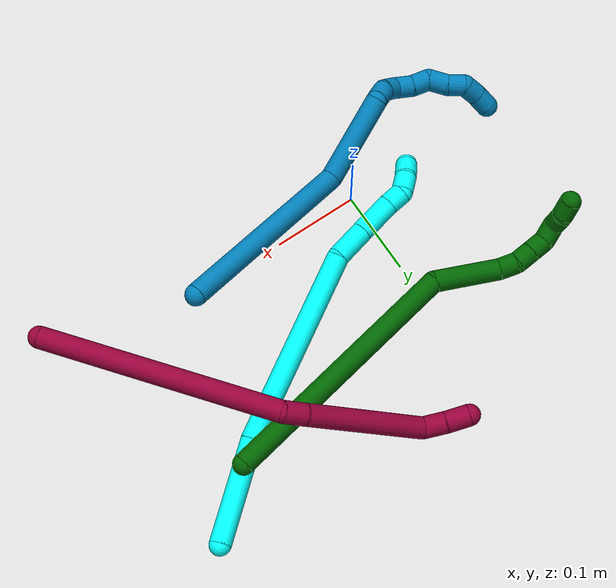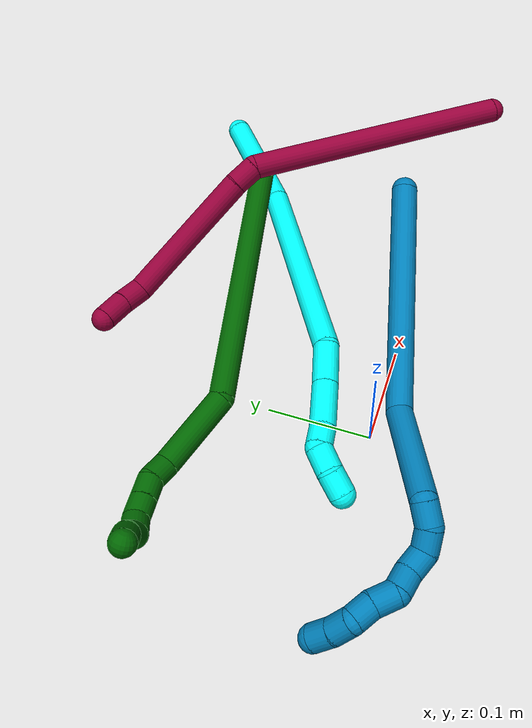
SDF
<sdf version="1.7">
 <world name="default">
  <model name="3">
   <static>0</static>
   <link name="3">
    <collision name="collision-cylinder-e_1_1_4">
     <pose>-0.055306 -0.019465 0.011481 1.03789 -1.18288 -0.732614</pose>
     <geometry><cylinder><radius>0.0125</radius><length>0.119491</length></cylinder></geometry>
     <surface>
      <friction><ode><mu>1.16</mu><mu2>1.16</mu2><slip1>0</slip1><slip2>0</slip2></ode></friction>
      <contact><ode><kp>1e+06</kp><kd>1</kd><max_vel>0</max_vel><min_depth>0.001</min_depth></ode></contact>
     </surface>
    </collision>
    <visual name="visual-cylinder-e_1_1_4">
     <pose>-0.055306 -0.019465 0.011481 1.03789 -1.18288 -0.732614</pose>
     <geometry><cylinder><radius>0.0125</radius><length>0.119491</length></cylinder></geometry>
     <material><ambient>0.003922 1 0.996078 1</ambient></material>
    </visual>
    <collision name="collision-cylinder-e_2_4_5">
     <pose>-0.212458 -0.088135 0.023857 1.55261 -1.12068 -1.10437</pose>
     <geometry><cylinder><radius>0.0125</radius><length>0.226224</length></cylinder></geometry>
     <surface>
      <friction><ode><mu>1.16</mu><mu2>1.16</mu2><slip1>0</slip1><slip2>0</slip2></ode></friction>
      <contact><ode><kp>1e+06</kp><kd>1</kd><max_vel>0</max_vel><min_depth>0.001</min_depth></ode></contact>
     </surface>
    </collision>
    <visual name="visual-cylinder-e_2_4_5">
     <pose>-0.212458 -0.088135 0.023857 1.55261 -1.12068 -1.10437</pose>
     <geometry><cylinder><radius>0.0125</radius><length>0.226224</length></cylinder></geometry>
     <material><ambient>0.003922 1 0.996078 1</ambient></material>
    </visual>
    <collision name="collision-cylinder-e_3_5_6">
     <pose>-0.328895 -0.151794 0.027335 1.39394 -0.78222 -0.664769</pose>
     <geometry><cylinder><radius>0.0125</radius><length>0.041403</length></cylinder></geometry>
     <surface>
      <friction><ode><mu>1.16</mu><mu2>1.16</mu2><slip1>0</slip1><slip2>0</slip2></ode></friction>
      <contact><ode><kp>1e+06</kp><kd>1</kd><max_vel>0</max_vel><min_depth>0.001</min_depth></ode></contact>
     </surface>
    </collision>
    <visual name="visual-cylinder-e_3_5_6">
     <pose>-0.328895 -0.151794 0.027335 1.39394 -0.78222 -0.664769</pose>
     <geometry><cylinder><radius>0.0125</radius><length>0.041403</length></cylinder></geometry>
     <material><ambient>0.003922 1 0.996078 1</ambient></material>
    </visual>
    <collision name="collision-cylinder-e_4_6_7">
     <pose>-0.35961 -0.182221 0.031073 1.49867 -0.788817 -0.738898</pose>
     <geometry><cylinder><radius>0.0125</radius><length>0.045449</length></cylinder></geometry>
     <surface>
      <friction><ode><mu>1.16</mu><mu2>1.16</mu2><slip1>0</slip1><slip2>0</slip2></ode></friction>
      <contact><ode><kp>1e+06</kp><kd>1</kd><max_vel>0</max_vel><min_depth>0.001</min_depth></ode></contact>
     </surface>
    </collision>
    <visual name="visual-cylinder-e_4_6_7">
     <pose>-0.35961 -0.182221 0.031073 1.49867 -0.788817 -0.738898</pose>
     <geometry><cylinder><radius>0.0125</radius><length>0.045449</length></cylinder></geometry>
     <material><ambient>0.003922 1 0.996078 1</ambient></material>
    </visual>
    <collision name="collision-cylinder-e_5_7_8">
     <pose>-0.382555 -0.206079 0.031429 1.67161 -0.710628 -0.779034</pose>
     <geometry><cylinder><radius>0.0125</radius><length>0.020914</length></cylinder></geometry>
     <surface>
      <friction><ode><mu>1.16</mu><mu2>1.16</mu2><slip1>0</slip1><slip2>0</slip2></ode></friction>
      <contact><ode><kp>1e+06</kp><kd>1</kd><max_vel>0</max_vel><min_depth>0.001</min_depth></ode></contact>
     </surface>
    </collision>
    <visual name="visual-cylinder-e_5_7_8">
     <pose>-0.382555 -0.206079 0.031429 1.67161 -0.710628 -0.779034</pose>
     <geometry><cylinder><radius>0.0125</radius><length>0.020914</length></cylinder></geometry>
     <material><ambient>0.003922 1 0.996078 1</ambient></material>
    </visual>
    <collision name="collision-cylinder-e_6_8_9">
     <pose>-0.399326 -0.217878 0.035571 0.670024 -1.00622 -0.3786</pose>
     <geometry><cylinder><radius>0.0125</radius><length>0.023555</length></cylinder></geometry>
     <surface>
      <friction><ode><mu>1.16</mu><mu2>1.16</mu2><slip1>0</slip1><slip2>0</slip2></ode></friction>
      <contact><ode><kp>1e+06</kp><kd>1</kd><max_vel>0</max_vel><min_depth>0.001</min_depth></ode></contact>
     </surface>
    </collision>
    <visual name="visual-cylinder-e_6_8_9">
     <pose>-0.399326 -0.217878 0.035571 0.670024 -1.00622 -0.3786</pose>
     <geometry><cylinder><radius>0.0125</radius><length>0.023555</length></cylinder></geometry>
     <material><ambient>0.003922 1 0.996078 1</ambient></material>
    </visual>
    <collision name="collision-cylinder-e_7_9_2">
     <pose>-0.417426 -0.224639 0.04808 0.359798 -0.789269 -0.151199</pose>
     <geometry><cylinder><radius>0.0125</radius><length>0.022964</length></cylinder></geometry>
     <surface>
      <friction><ode><mu>1.16</mu><mu2>1.16</mu2><slip1>0</slip1><slip2>0</slip2></ode></friction>
      <contact><ode><kp>1e+06</kp><kd>1</kd><max_vel>0</max_vel><min_depth>0.001</min_depth></ode></contact>
     </surface>
    </collision>
    <visual name="visual-cylinder-e_7_9_2">
     <pose>-0.417426 -0.224639 0.04808 0.359798 -0.789269 -0.151199</pose>
     <geometry><cylinder><radius>0.0125</radius><length>0.022964</length></cylinder></geometry>
     <material><ambient>0.003922 1 0.996078 1</ambient></material>
    </visual>
    <collision name="collision-sphere-2">
     <pose>-0.425577 -0.227486 0.05565 0 -0 0</pose>
     <geometry><sphere><radius>0.0125</radius></sphere></geometry>
     <surface>
      <friction><ode><mu>1.16</mu><mu2>1.16</mu2><slip1>0</slip1><slip2>0</slip2></ode></friction>
      <contact><ode><kp>1e+06</kp><kd>1</kd><max_vel>0</max_vel><min_depth>0.001</min_depth></ode></contact>
     </surface>
    </collision>
    <visual name="visual-sphere-2">
     <pose>-0.425577 -0.227486 0.05565 0 -0 0</pose>
     <geometry><sphere><radius>0.0125</radius></sphere></geometry>
     <material><ambient>0.003922 1 0.996078 1</ambient></material>
    </visual>
    <collision name="collision-sphere-9">
     <pose>-0.409276 -0.221791 0.04051 0 -0 0</pose>
     <geometry><sphere><radius>0.0125</radius></sphere></geometry>
     <surface>
      <friction><ode><mu>1.16</mu><mu2>1.16</mu2><slip1>0</slip1><slip2>0</slip2></ode></friction>
      <contact><ode><kp>1e+06</kp><kd>1</kd><max_vel>0</max_vel><min_depth>0.001</min_depth></ode></contact>
     </surface>
    </collision>
    <visual name="visual-sphere-9">
     <pose>-0.409276 -0.221791 0.04051 0 -0 0</pose>
     <geometry><sphere><radius>0.0125</radius></sphere></geometry>
     <material><ambient>0.003922 1 0.996078 1</ambient></material>
    </visual>
    <collision name="collision-sphere-4">
     <pose>-0.110613 -0.038931 0.022962 0 -0 0</pose>
     <geometry><sphere><radius>0.0125</radius></sphere></geometry>
     <surface>
      <friction><ode><mu>1.16</mu><mu2>1.16</mu2><slip1>0</slip1><slip2>0</slip2></ode></friction>
      <contact><ode><kp>1e+06</kp><kd>1</kd><max_vel>0</max_vel><min_depth>0.001</min_depth></ode></contact>
     </surface>
    </collision>
    <visual name="visual-sphere-4">
     <pose>-0.110613 -0.038931 0.022962 0 -0 0</pose>
     <geometry><sphere><radius>0.0125</radius></sphere></geometry>
     <material><ambient>0.003922 1 0.996078 1</ambient></material>
    </visual>
    <collision name="collision-sphere-1">
     <geometry><sphere><radius>0.0125</radius></sphere></geometry>
     <surface>
      <friction><ode><mu>1.16</mu><mu2>1.16</mu2><slip1>0</slip1><slip2>0</slip2></ode></friction>
      <contact><ode><kp>1e+06</kp><kd>1</kd><max_vel>0</max_vel><min_depth>0.001</min_depth></ode></contact>
     </surface>
    </collision>
    <visual name="visual-sphere-1">
     <geometry><sphere><radius>0.0125</radius></sphere></geometry>
     <material><ambient>0.003922 1 0.996078 1</ambient></material>
    </visual>
    <collision name="collision-sphere-8">
     <pose>-0.389376 -0.213964 0.030632 0 -0 0</pose>
     <geometry><sphere><radius>0.0125</radius></sphere></geometry>
     <surface>
      <friction><ode><mu>1.16</mu><mu2>1.16</mu2><slip1>0</slip1><slip2>0</slip2></ode></friction>
      <contact><ode><kp>1e+06</kp><kd>1</kd><max_vel>0</max_vel><min_depth>0.001</min_depth></ode></contact>
     </surface>
    </collision>
    <visual name="visual-sphere-8">
     <pose>-0.389376 -0.213964 0.030632 0 -0 0</pose>
     <geometry><sphere><radius>0.0125</radius></sphere></geometry>
     <material><ambient>0.003922 1 0.996078 1</ambient></material>
    </visual>
    <collision name="collision-sphere-5">
     <pose>-0.314304 -0.137338 0.024752 0 -0 0</pose>
     <geometry><sphere><radius>0.0125</radius></sphere></geometry>
     <surface>
      <friction><ode><mu>1.16</mu><mu2>1.16</mu2><slip1>0</slip1><slip2>0</slip2></ode></friction>
      <contact><ode><kp>1e+06</kp><kd>1</kd><max_vel>0</max_vel><min_depth>0.001</min_depth></ode></contact>
     </surface>
    </collision>
    <visual name="visual-sphere-5">
     <pose>-0.314304 -0.137338 0.024752 0 -0 0</pose>
     <geometry><sphere><radius>0.0125</radius></sphere></geometry>
     <material><ambient>0.003922 1 0.996078 1</ambient></material>
    </visual>
    <collision name="collision-sphere-6">
     <pose>-0.343487 -0.166249 0.029919 0 -0 0</pose>
     <geometry><sphere><radius>0.0125</radius></sphere></geometry>
     <surface>
      <friction><ode><mu>1.16</mu><mu2>1.16</mu2><slip1>0</slip1><slip2>0</slip2></ode></friction>
      <contact><ode><kp>1e+06</kp><kd>1</kd><max_vel>0</max_vel><min_depth>0.001</min_depth></ode></contact>
     </surface>
    </collision>
    <visual name="visual-sphere-6">
     <pose>-0.343487 -0.166249 0.029919 0 -0 0</pose>
     <geometry><sphere><radius>0.0125</radius></sphere></geometry>
     <material><ambient>0.003922 1 0.996078 1</ambient></material>
    </visual>
    <collision name="collision-sphere-7">
     <pose>-0.375734 -0.198193 0.032227 0 -0 0</pose>
     <geometry><sphere><radius>0.0125</radius></sphere></geometry>
     <surface>
      <friction><ode><mu>1.16</mu><mu2>1.16</mu2><slip1>0</slip1><slip2>0</slip2></ode></friction>
      <contact><ode><kp>1e+06</kp><kd>1</kd><max_vel>0</max_vel><min_depth>0.001</min_depth></ode></contact>
     </surface>
    </collision>
    <visual name="visual-sphere-7">
     <pose>-0.375734 -0.198193 0.032227 0 -0 0</pose>
     <geometry><sphere><radius>0.0125</radius></sphere></geometry>
     <material><ambient>0.003922 1 0.996078 1</ambient></material>
    </visual>
    <inertial>
     <pose>-0.223251 -0.102863 0.023825 0 -0 0</pose>
     <mass>0.5</mass>
     <inertia>
      <ixx>-0.000214</ixx>
      <ixy>0</ixy>
      <ixz>0</ixz>
      <iyy>0.000496</iyy>
      <iyz>0</iyz>
      <izz>0.001519</izz>
     </inertia>
    </inertial>
   </link>
   <pose>0.345021 0.253938 0.013144 2.89465 0.267935 0.974876</pose>
  </model>
  <model name="6">
   <static>0</static>
   <link name="6">
    <collision name="collision-cylinder-e_1_1_4">
     <pose>-0.078619 0.081281 0.097539 -0.69473 -0.554424 0.205307</pose>
     <geometry><cylinder><radius>0.0125</radius><length>0.298672</length></cylinder></geometry>
     <surface>
      <friction><ode><mu>1.16</mu><mu2>1.16</mu2><slip1>0</slip1><slip2>0</slip2></ode></friction>
      <contact><ode><kp>1e+06</kp><kd>1</kd><max_vel>0</max_vel><min_depth>0.001</min_depth></ode></contact>
     </surface>
    </collision>
    <visual name="visual-cylinder-e_1_1_4">
     <pose>-0.078619 0.081281 0.097539 -0.69473 -0.554424 0.205307</pose>
     <geometry><cylinder><radius>0.0125</radius><length>0.298672</length></cylinder></geometry>
     <material><ambient>0 0.392157 0.003922 1</ambient></material>
    </visual>
    <collision name="collision-cylinder-e_2_4_5">
     <pose>-0.182852 0.163608 0.225206 -0.034726 -0.704299 0.012762</pose>
     <geometry><cylinder><radius>0.0125</radius><length>0.079118</length></cylinder></geometry>
     <surface>
      <friction><ode><mu>1.16</mu><mu2>1.16</mu2><slip1>0</slip1><slip2>0</slip2></ode></friction>
      <contact><ode><kp>1e+06</kp><kd>1</kd><max_vel>0</max_vel><min_depth>0.001</min_depth></ode></contact>
     </surface>
    </collision>
    <visual name="visual-cylinder-e_2_4_5">
     <pose>-0.182852 0.163608 0.225206 -0.034726 -0.704299 0.012762</pose>
     <geometry><cylinder><radius>0.0125</radius><length>0.079118</length></cylinder></geometry>
     <material><ambient>0 0.392157 0.003922 1</ambient></material>
    </visual>
    <collision name="collision-cylinder-e_3_5_6">
     <pose>-0.217746 0.166304 0.260667 -0.299909 -1.02928 0.170457</pose>
     <geometry><cylinder><radius>0.0125</radius><length>0.021657</length></cylinder></geometry>
     <surface>
      <friction><ode><mu>1.16</mu><mu2>1.16</mu2><slip1>0</slip1><slip2>0</slip2></ode></friction>
      <contact><ode><kp>1e+06</kp><kd>1</kd><max_vel>0</max_vel><min_depth>0.001</min_depth></ode></contact>
     </surface>
    </collision>
    <visual name="visual-cylinder-e_3_5_6">
     <pose>-0.217746 0.166304 0.260667 -0.299909 -1.02928 0.170457</pose>
     <geometry><cylinder><radius>0.0125</radius><length>0.021657</length></cylinder></geometry>
     <material><ambient>0 0.392157 0.003922 1</ambient></material>
    </visual>
    <collision name="collision-cylinder-e_4_6_7">
     <pose>-0.233756 0.172788 0.271909 -0.685742 -0.722536 0.268145</pose>
     <geometry><cylinder><radius>0.0125</radius><length>0.020358</length></cylinder></geometry>
     <surface>
      <friction><ode><mu>1.16</mu><mu2>1.16</mu2><slip1>0</slip1><slip2>0</slip2></ode></friction>
      <contact><ode><kp>1e+06</kp><kd>1</kd><max_vel>0</max_vel><min_depth>0.001</min_depth></ode></contact>
     </surface>
    </collision>
    <visual name="visual-cylinder-e_4_6_7">
     <pose>-0.233756 0.172788 0.271909 -0.685742 -0.722536 0.268145</pose>
     <geometry><cylinder><radius>0.0125</radius><length>0.020358</length></cylinder></geometry>
     <material><ambient>0 0.392157 0.003922 1</ambient></material>
    </visual>
    <collision name="collision-cylinder-e_5_7_8">
     <pose>-0.247093 0.182351 0.283652 -0.681093 -0.721521 0.265798</pose>
     <geometry><cylinder><radius>0.0125</radius><length>0.020003</length></cylinder></geometry>
     <surface>
      <friction><ode><mu>1.16</mu><mu2>1.16</mu2><slip1>0</slip1><slip2>0</slip2></ode></friction>
      <contact><ode><kp>1e+06</kp><kd>1</kd><max_vel>0</max_vel><min_depth>0.001</min_depth></ode></contact>
     </surface>
    </collision>
    <visual name="visual-cylinder-e_5_7_8">
     <pose>-0.247093 0.182351 0.283652 -0.681093 -0.721521 0.265798</pose>
     <geometry><cylinder><radius>0.0125</radius><length>0.020003</length></cylinder></geometry>
     <material><ambient>0 0.392157 0.003922 1</ambient></material>
    </visual>
    <collision name="collision-cylinder-e_6_8_9">
     <pose>-0.260324 0.194415 0.29144 -1.31042 -0.717535 0.561134</pose>
     <geometry><cylinder><radius>0.0125</radius><length>0.02015</length></cylinder></geometry>
     <surface>
      <friction><ode><mu>1.16</mu><mu2>1.16</mu2><slip1>0</slip1><slip2>0</slip2></ode></friction>
      <contact><ode><kp>1e+06</kp><kd>1</kd><max_vel>0</max_vel><min_depth>0.001</min_depth></ode></contact>
     </surface>
    </collision>
    <visual name="visual-cylinder-e_6_8_9">
     <pose>-0.260324 0.194415 0.29144 -1.31042 -0.717535 0.561134</pose>
     <geometry><cylinder><radius>0.0125</radius><length>0.02015</length></cylinder></geometry>
     <material><ambient>0 0.392157 0.003922 1</ambient></material>
    </visual>
    <collision name="collision-cylinder-e_7_9_10">
     <pose>-0.275586 0.204925 0.289475 -2.46059 -1.04218 2.03559</pose>
     <geometry><cylinder><radius>0.0125</radius><length>0.020004</length></cylinder></geometry>
     <surface>
      <friction><ode><mu>1.16</mu><mu2>1.16</mu2><slip1>0</slip1><slip2>0</slip2></ode></friction>
      <contact><ode><kp>1e+06</kp><kd>1</kd><max_vel>0</max_vel><min_depth>0.001</min_depth></ode></contact>
     </surface>
    </collision>
    <visual name="visual-cylinder-e_7_9_10">
     <pose>-0.275586 0.204925 0.289475 -2.46059 -1.04218 2.03559</pose>
     <geometry><cylinder><radius>0.0125</radius><length>0.020004</length></cylinder></geometry>
     <material><ambient>0 0.392157 0.003922 1</ambient></material>
    </visual>
    <collision name="collision-cylinder-e_8_10_2">
     <pose>-0.291983 0.214191 0.283806 -1.85066 -0.886126 1.12454</pose>
     <geometry><cylinder><radius>0.0125</radius><length>0.020037</length></cylinder></geometry>
     <surface>
      <friction><ode><mu>1.16</mu><mu2>1.16</mu2><slip1>0</slip1><slip2>0</slip2></ode></friction>
      <contact><ode><kp>1e+06</kp><kd>1</kd><max_vel>0</max_vel><min_depth>0.001</min_depth></ode></contact>
     </surface>
    </collision>
    <visual name="visual-cylinder-e_8_10_2">
     <pose>-0.291983 0.214191 0.283806 -1.85066 -0.886126 1.12454</pose>
     <geometry><cylinder><radius>0.0125</radius><length>0.020037</length></cylinder></geometry>
     <material><ambient>0 0.392157 0.003922 1</ambient></material>
    </visual>
    <collision name="collision-sphere-2">
     <pose>-0.299744 0.22028 0.282055 0 -0 0</pose>
     <geometry><sphere><radius>0.0125</radius></sphere></geometry>
     <surface>
      <friction><ode><mu>1.16</mu><mu2>1.16</mu2><slip1>0</slip1><slip2>0</slip2></ode></friction>
      <contact><ode><kp>1e+06</kp><kd>1</kd><max_vel>0</max_vel><min_depth>0.001</min_depth></ode></contact>
     </surface>
    </collision>
    <visual name="visual-sphere-2">
     <pose>-0.299744 0.22028 0.282055 0 -0 0</pose>
     <geometry><sphere><radius>0.0125</radius></sphere></geometry>
     <material><ambient>0 0.392157 0.003922 1</ambient></material>
    </visual>
    <collision name="collision-sphere-10">
     <pose>-0.284222 0.208101 0.285556 0 -0 0</pose>
     <geometry><sphere><radius>0.0125</radius></sphere></geometry>
     <surface>
      <friction><ode><mu>1.16</mu><mu2>1.16</mu2><slip1>0</slip1><slip2>0</slip2></ode></friction>
      <contact><ode><kp>1e+06</kp><kd>1</kd><max_vel>0</max_vel><min_depth>0.001</min_depth></ode></contact>
     </surface>
    </collision>
    <visual name="visual-sphere-10">
     <pose>-0.284222 0.208101 0.285556 0 -0 0</pose>
     <geometry><sphere><radius>0.0125</radius></sphere></geometry>
     <material><ambient>0 0.392157 0.003922 1</ambient></material>
    </visual>
    <collision name="collision-sphere-9">
     <pose>-0.266949 0.20175 0.293394 0 -0 0</pose>
     <geometry><sphere><radius>0.0125</radius></sphere></geometry>
     <surface>
      <friction><ode><mu>1.16</mu><mu2>1.16</mu2><slip1>0</slip1><slip2>0</slip2></ode></friction>
      <contact><ode><kp>1e+06</kp><kd>1</kd><max_vel>0</max_vel><min_depth>0.001</min_depth></ode></contact>
     </surface>
    </collision>
    <visual name="visual-sphere-9">
     <pose>-0.266949 0.20175 0.293394 0 -0 0</pose>
     <geometry><sphere><radius>0.0125</radius></sphere></geometry>
     <material><ambient>0 0.392157 0.003922 1</ambient></material>
    </visual>
    <collision name="collision-sphere-4">
     <pose>-0.157237 0.162562 0.195078 0 -0 0</pose>
     <geometry><sphere><radius>0.0125</radius></sphere></geometry>
     <surface>
      <friction><ode><mu>1.16</mu><mu2>1.16</mu2><slip1>0</slip1><slip2>0</slip2></ode></friction>
      <contact><ode><kp>1e+06</kp><kd>1</kd><max_vel>0</max_vel><min_depth>0.001</min_depth></ode></contact>
     </surface>
    </collision>
    <visual name="visual-sphere-4">
     <pose>-0.157237 0.162562 0.195078 0 -0 0</pose>
     <geometry><sphere><radius>0.0125</radius></sphere></geometry>
     <material><ambient>0 0.392157 0.003922 1</ambient></material>
    </visual>
    <collision name="collision-sphere-1">
     <geometry><sphere><radius>0.0125</radius></sphere></geometry>
     <surface>
      <friction><ode><mu>1.16</mu><mu2>1.16</mu2><slip1>0</slip1><slip2>0</slip2></ode></friction>
      <contact><ode><kp>1e+06</kp><kd>1</kd><max_vel>0</max_vel><min_depth>0.001</min_depth></ode></contact>
     </surface>
    </collision>
    <visual name="visual-sphere-1">
     <geometry><sphere><radius>0.0125</radius></sphere></geometry>
     <material><ambient>0 0.392157 0.003922 1</ambient></material>
    </visual>
    <collision name="collision-sphere-8">
     <pose>-0.2537 0.187079 0.289486 0 -0 0</pose>
     <geometry><sphere><radius>0.0125</radius></sphere></geometry>
     <surface>
      <friction><ode><mu>1.16</mu><mu2>1.16</mu2><slip1>0</slip1><slip2>0</slip2></ode></friction>
      <contact><ode><kp>1e+06</kp><kd>1</kd><max_vel>0</max_vel><min_depth>0.001</min_depth></ode></contact>
     </surface>
    </collision>
    <visual name="visual-sphere-8">
     <pose>-0.2537 0.187079 0.289486 0 -0 0</pose>
     <geometry><sphere><radius>0.0125</radius></sphere></geometry>
     <material><ambient>0 0.392157 0.003922 1</ambient></material>
    </visual>
    <collision name="collision-sphere-5">
     <pose>-0.208466 0.164655 0.255335 0 -0 0</pose>
     <geometry><sphere><radius>0.0125</radius></sphere></geometry>
     <surface>
      <friction><ode><mu>1.16</mu><mu2>1.16</mu2><slip1>0</slip1><slip2>0</slip2></ode></friction>
      <contact><ode><kp>1e+06</kp><kd>1</kd><max_vel>0</max_vel><min_depth>0.001</min_depth></ode></contact>
     </surface>
    </collision>
    <visual name="visual-sphere-5">
     <pose>-0.208466 0.164655 0.255335 0 -0 0</pose>
     <geometry><sphere><radius>0.0125</radius></sphere></geometry>
     <material><ambient>0 0.392157 0.003922 1</ambient></material>
    </visual>
    <collision name="collision-sphere-6">
     <pose>-0.227025 0.167953 0.265999 0 -0 0</pose>
     <geometry><sphere><radius>0.0125</radius></sphere></geometry>
     <surface>
      <friction><ode><mu>1.16</mu><mu2>1.16</mu2><slip1>0</slip1><slip2>0</slip2></ode></friction>
      <contact><ode><kp>1e+06</kp><kd>1</kd><max_vel>0</max_vel><min_depth>0.001</min_depth></ode></contact>
     </surface>
    </collision>
    <visual name="visual-sphere-6">
     <pose>-0.227025 0.167953 0.265999 0 -0 0</pose>
     <geometry><sphere><radius>0.0125</radius></sphere></geometry>
     <material><ambient>0 0.392157 0.003922 1</ambient></material>
    </visual>
    <collision name="collision-sphere-7">
     <pose>-0.240487 0.177623 0.277818 0 -0 0</pose>
     <geometry><sphere><radius>0.0125</radius></sphere></geometry>
     <surface>
      <friction><ode><mu>1.16</mu><mu2>1.16</mu2><slip1>0</slip1><slip2>0</slip2></ode></friction>
      <contact><ode><kp>1e+06</kp><kd>1</kd><max_vel>0</max_vel><min_depth>0.001</min_depth></ode></contact>
     </surface>
    </collision>
    <visual name="visual-sphere-7">
     <pose>-0.240487 0.177623 0.277818 0 -0 0</pose>
     <geometry><sphere><radius>0.0125</radius></sphere></geometry>
     <material><ambient>0 0.392157 0.003922 1</ambient></material>
    </visual>
    <inertial>
     <pose>-0.137948 0.120592 0.162309 0 -0 0</pose>
     <mass>0.5</mass>
     <inertia>
      <ixx>0.002262</ixx>
      <ixy>0</ixy>
      <ixz>0</ixz>
      <iyy>0.002291</iyy>
      <iyz>0</iyz>
      <izz>1.2e-05</izz>
     </inertia>
    </inertial>
   </link>
   <pose>0.278132 0.199484 0.037039 2.87829 0.688673 -0.57501</pose>
  </model>
  <model name="8">
   <static>0</static>
   <link name="8">
    <collision name="collision-cylinder-e_1_1_4">
     <pose>-0.066456 0.052887 0.107774 -0.456196 -0.505579 0.119786</pose>
     <geometry><cylinder><radius>0.0125</radius><length>0.274434</length></cylinder></geometry>
     <surface>
      <friction><ode><mu>1.16</mu><mu2>1.16</mu2><slip1>0</slip1><slip2>0</slip2></ode></friction>
      <contact><ode><kp>1e+06</kp><kd>1</kd><max_vel>0</max_vel><min_depth>0.001</min_depth></ode></contact>
     </surface>
    </collision>
    <visual name="visual-cylinder-e_1_1_4">
     <pose>-0.066456 0.052887 0.107774 -0.456196 -0.505579 0.119786</pose>
     <geometry><cylinder><radius>0.0125</radius><length>0.274434</length></cylinder></geometry>
     <material><ambient>0.584314 0 0.227451 1</ambient></material>
    </visual>
    <collision name="collision-cylinder-e_2_4_5">
     <pose>-0.142841 0.105911 0.223656 -0.016943 -0.885884 0.008038</pose>
     <geometry><cylinder><radius>0.0125</radius><length>0.02564</length></cylinder></geometry>
     <surface>
      <friction><ode><mu>1.16</mu><mu2>1.16</mu2><slip1>0</slip1><slip2>0</slip2></ode></friction>
      <contact><ode><kp>1e+06</kp><kd>1</kd><max_vel>0</max_vel><min_depth>0.001</min_depth></ode></contact>
     </surface>
    </collision>
    <visual name="visual-cylinder-e_2_4_5">
     <pose>-0.142841 0.105911 0.223656 -0.016943 -0.885884 0.008038</pose>
     <geometry><cylinder><radius>0.0125</radius><length>0.02564</length></cylinder></geometry>
     <material><ambient>0.584314 0 0.227451 1</ambient></material>
    </visual>
    <collision name="collision-cylinder-e_3_5_6">
     <pose>-0.213864 0.10164 0.27195 0.109244 -0.986236 -0.058749</pose>
     <geometry><cylinder><radius>0.0125</radius><length>0.146516</length></cylinder></geometry>
     <surface>
      <friction><ode><mu>1.16</mu><mu2>1.16</mu2><slip1>0</slip1><slip2>0</slip2></ode></friction>
      <contact><ode><kp>1e+06</kp><kd>1</kd><max_vel>0</max_vel><min_depth>0.001</min_depth></ode></contact>
     </surface>
    </collision>
    <visual name="visual-cylinder-e_3_5_6">
     <pose>-0.213864 0.10164 0.27195 0.109244 -0.986236 -0.058749</pose>
     <geometry><cylinder><radius>0.0125</radius><length>0.146516</length></cylinder></geometry>
     <material><ambient>0.584314 0 0.227451 1</ambient></material>
    </visual>
    <collision name="collision-cylinder-e_4_6_7">
     <pose>-0.27933 0.096039 0.324641 0.095223 -0.334965 -0.016111</pose>
     <geometry><cylinder><radius>0.0125</radius><length>0.026604</length></cylinder></geometry>
     <surface>
      <friction><ode><mu>1.16</mu><mu2>1.16</mu2><slip1>0</slip1><slip2>0</slip2></ode></friction>
      <contact><ode><kp>1e+06</kp><kd>1</kd><max_vel>0</max_vel><min_depth>0.001</min_depth></ode></contact>
     </surface>
    </collision>
    <visual name="visual-cylinder-e_4_6_7">
     <pose>-0.27933 0.096039 0.324641 0.095223 -0.334965 -0.016111</pose>
     <geometry><cylinder><radius>0.0125</radius><length>0.026604</length></cylinder></geometry>
     <material><ambient>0.584314 0 0.227451 1</ambient></material>
    </visual>
    <collision name="collision-cylinder-e_5_7_2">
     <pose>-0.288253 0.092507 0.349535 0.186487 -0.346368 -0.032715</pose>
     <geometry><cylinder><radius>0.0125</radius><length>0.026806</length></cylinder></geometry>
     <surface>
      <friction><ode><mu>1.16</mu><mu2>1.16</mu2><slip1>0</slip1><slip2>0</slip2></ode></friction>
      <contact><ode><kp>1e+06</kp><kd>1</kd><max_vel>0</max_vel><min_depth>0.001</min_depth></ode></contact>
     </surface>
    </collision>
    <visual name="visual-cylinder-e_5_7_2">
     <pose>-0.288253 0.092507 0.349535 0.186487 -0.346368 -0.032715</pose>
     <geometry><cylinder><radius>0.0125</radius><length>0.026806</length></cylinder></geometry>
     <material><ambient>0.584314 0 0.227451 1</ambient></material>
    </visual>
    <collision name="collision-sphere-2">
     <pose>-0.292803 0.090169 0.361923 0 -0 0</pose>
     <geometry><sphere><radius>0.0125</radius></sphere></geometry>
     <surface>
      <friction><ode><mu>1.16</mu><mu2>1.16</mu2><slip1>0</slip1><slip2>0</slip2></ode></friction>
      <contact><ode><kp>1e+06</kp><kd>1</kd><max_vel>0</max_vel><min_depth>0.001</min_depth></ode></contact>
     </surface>
    </collision>
    <visual name="visual-sphere-2">
     <pose>-0.292803 0.090169 0.361923 0 -0 0</pose>
     <geometry><sphere><radius>0.0125</radius></sphere></geometry>
     <material><ambient>0.584314 0 0.227451 1</ambient></material>
    </visual>
    <collision name="collision-sphere-7">
     <pose>-0.283703 0.094844 0.337146 0 -0 0</pose>
     <geometry><sphere><radius>0.0125</radius></sphere></geometry>
     <surface>
      <friction><ode><mu>1.16</mu><mu2>1.16</mu2><slip1>0</slip1><slip2>0</slip2></ode></friction>
      <contact><ode><kp>1e+06</kp><kd>1</kd><max_vel>0</max_vel><min_depth>0.001</min_depth></ode></contact>
     </surface>
    </collision>
    <visual name="visual-sphere-7">
     <pose>-0.283703 0.094844 0.337146 0 -0 0</pose>
     <geometry><sphere><radius>0.0125</radius></sphere></geometry>
     <material><ambient>0.584314 0 0.227451 1</ambient></material>
    </visual>
    <collision name="collision-sphere-6">
     <pose>-0.274957 0.097233 0.312135 0 -0 0</pose>
     <geometry><sphere><radius>0.0125</radius></sphere></geometry>
     <surface>
      <friction><ode><mu>1.16</mu><mu2>1.16</mu2><slip1>0</slip1><slip2>0</slip2></ode></friction>
      <contact><ode><kp>1e+06</kp><kd>1</kd><max_vel>0</max_vel><min_depth>0.001</min_depth></ode></contact>
     </surface>
    </collision>
    <visual name="visual-sphere-6">
     <pose>-0.274957 0.097233 0.312135 0 -0 0</pose>
     <geometry><sphere><radius>0.0125</radius></sphere></geometry>
     <material><ambient>0.584314 0 0.227451 1</ambient></material>
    </visual>
    <collision name="collision-sphere-5">
     <pose>-0.15277 0.106048 0.231765 0 -0 0</pose>
     <geometry><sphere><radius>0.0125</radius></sphere></geometry>
     <surface>
      <friction><ode><mu>1.16</mu><mu2>1.16</mu2><slip1>0</slip1><slip2>0</slip2></ode></friction>
      <contact><ode><kp>1e+06</kp><kd>1</kd><max_vel>0</max_vel><min_depth>0.001</min_depth></ode></contact>
     </surface>
    </collision>
    <visual name="visual-sphere-5">
     <pose>-0.15277 0.106048 0.231765 0 -0 0</pose>
     <geometry><sphere><radius>0.0125</radius></sphere></geometry>
     <material><ambient>0.584314 0 0.227451 1</ambient></material>
    </visual>
    <collision name="collision-sphere-1">
     <geometry><sphere><radius>0.0125</radius></sphere></geometry>
     <surface>
      <friction><ode><mu>1.16</mu><mu2>1.16</mu2><slip1>0</slip1><slip2>0</slip2></ode></friction>
      <contact><ode><kp>1e+06</kp><kd>1</kd><max_vel>0</max_vel><min_depth>0.001</min_depth></ode></contact>
     </surface>
    </collision>
    <visual name="visual-sphere-1">
     <geometry><sphere><radius>0.0125</radius></sphere></geometry>
     <material><ambient>0.584314 0 0.227451 1</ambient></material>
    </visual>
    <collision name="collision-sphere-4">
     <pose>-0.132912 0.105773 0.215547 0 -0 0</pose>
     <geometry><sphere><radius>0.0125</radius></sphere></geometry>
     <surface>
      <friction><ode><mu>1.16</mu><mu2>1.16</mu2><slip1>0</slip1><slip2>0</slip2></ode></friction>
      <contact><ode><kp>1e+06</kp><kd>1</kd><max_vel>0</max_vel><min_depth>0.001</min_depth></ode></contact>
     </surface>
    </collision>
    <visual name="visual-sphere-4">
     <pose>-0.132912 0.105773 0.215547 0 -0 0</pose>
     <geometry><sphere><radius>0.0125</radius></sphere></geometry>
     <material><ambient>0.584314 0 0.227451 1</ambient></material>
    </visual>
    <inertial>
     <pose>-0.136786 0.074312 0.186325 0 -0 0</pose>
     <mass>0.5</mass>
     <inertia>
      <ixx>0.001809</ixx>
      <ixy>0</ixy>
      <ixz>0</ixz>
      <iyy>0.002043</iyy>
      <iyz>0</iyz>
      <izz>0.000443</izz>
     </inertia>
    </inertial>
   </link>
   <pose>0.387541 -0.028687 0.083787 0.474697 -1.0334 -0.924048</pose>
  </model>
  <model name="9">
   <static>0</static>
   <link name="9">
    <collision name="collision-cylinder-e_1_1_4">
     <pose>-0.057841 -0.033409 0.091948 0.348521 -0.533956 -0.096225</pose>
     <geometry><cylinder><radius>0.0125</radius><length>0.227299</length></cylinder></geometry>
     <surface>
      <friction><ode><mu>1.16</mu><mu2>1.16</mu2><slip1>0</slip1><slip2>0</slip2></ode></friction>
      <contact><ode><kp>1e+06</kp><kd>1</kd><max_vel>0</max_vel><min_depth>0.001</min_depth></ode></contact>
     </surface>
    </collision>
    <visual name="visual-cylinder-e_1_1_4">
     <pose>-0.057841 -0.033409 0.091948 0.348521 -0.533956 -0.096225</pose>
     <geometry><cylinder><radius>0.0125</radius><length>0.227299</length></cylinder></geometry>
     <material><ambient>0 0.490196 0.709804 1</ambient></material>
    </visual>
    <collision name="collision-cylinder-e_2_4_5">
     <pose>-0.131317 -0.05641 0.232106 -0.212641 -0.306984 0.033019</pose>
     <geometry><cylinder><radius>0.0125</radius><length>0.103481</length></cylinder></geometry>
     <surface>
      <friction><ode><mu>1.16</mu><mu2>1.16</mu2><slip1>0</slip1><slip2>0</slip2></ode></friction>
      <contact><ode><kp>1e+06</kp><kd>1</kd><max_vel>0</max_vel><min_depth>0.001</min_depth></ode></contact>
     </surface>
    </collision>
    <visual name="visual-cylinder-e_2_4_5">
     <pose>-0.131317 -0.05641 0.232106 -0.212641 -0.306984 0.033019</pose>
     <geometry><cylinder><radius>0.0125</radius><length>0.103481</length></cylinder></geometry>
     <material><ambient>0 0.490196 0.709804 1</ambient></material>
    </visual>
    <collision name="collision-cylinder-e_3_5_6">
     <pose>-0.149799 -0.051633 0.289484 0.550859 -0.258621 -0.073466</pose>
     <geometry><cylinder><radius>0.0125</radius><length>0.022259</length></cylinder></geometry>
     <surface>
      <friction><ode><mu>1.16</mu><mu2>1.16</mu2><slip1>0</slip1><slip2>0</slip2></ode></friction>
      <contact><ode><kp>1e+06</kp><kd>1</kd><max_vel>0</max_vel><min_depth>0.001</min_depth></ode></contact>
     </surface>
    </collision>
    <visual name="visual-cylinder-e_3_5_6">
     <pose>-0.149799 -0.051633 0.289484 0.550859 -0.258621 -0.073466</pose>
     <geometry><cylinder><radius>0.0125</radius><length>0.022259</length></cylinder></geometry>
     <material><ambient>0 0.490196 0.709804 1</ambient></material>
    </visual>
    <collision name="collision-cylinder-e_4_6_7">
     <pose>-0.158673 -0.064001 0.304265 0.876175 -0.602276 -0.288956</pose>
     <geometry><cylinder><radius>0.0125</radius><length>0.021282</length></cylinder></geometry>
     <surface>
      <friction><ode><mu>1.16</mu><mu2>1.16</mu2><slip1>0</slip1><slip2>0</slip2></ode></friction>
      <contact><ode><kp>1e+06</kp><kd>1</kd><max_vel>0</max_vel><min_depth>0.001</min_depth></ode></contact>
     </surface>
    </collision>
    <visual name="visual-cylinder-e_4_6_7">
     <pose>-0.158673 -0.064001 0.304265 0.876175 -0.602276 -0.288956</pose>
     <geometry><cylinder><radius>0.0125</radius><length>0.021282</length></cylinder></geometry>
     <material><ambient>0 0.490196 0.709804 1</ambient></material>
    </visual>
    <collision name="collision-cylinder-e_5_7_8">
     <pose>-0.174939 -0.071255 0.313955 0.125993 -1.18907 -0.08525</pose>
     <geometry><cylinder><radius>0.0125</radius><length>0.022062</length></cylinder></geometry>
     <surface>
      <friction><ode><mu>1.16</mu><mu2>1.16</mu2><slip1>0</slip1><slip2>0</slip2></ode></friction>
      <contact><ode><kp>1e+06</kp><kd>1</kd><max_vel>0</max_vel><min_depth>0.001</min_depth></ode></contact>
     </surface>
    </collision>
    <visual name="visual-cylinder-e_5_7_8">
     <pose>-0.174939 -0.071255 0.313955 0.125993 -1.18907 -0.08525</pose>
     <geometry><cylinder><radius>0.0125</radius><length>0.022062</length></cylinder></geometry>
     <material><ambient>0 0.490196 0.709804 1</ambient></material>
    </visual>
    <collision name="collision-cylinder-e_6_8_9">
     <pose>-0.193581 -0.070621 0.323626 -0.202831 -0.973972 0.10767</pose>
     <geometry><cylinder><radius>0.0125</radius><length>0.020325</length></cylinder></geometry>
     <surface>
      <friction><ode><mu>1.16</mu><mu2>1.16</mu2><slip1>0</slip1><slip2>0</slip2></ode></friction>
      <contact><ode><kp>1e+06</kp><kd>1</kd><max_vel>0</max_vel><min_depth>0.001</min_depth></ode></contact>
     </surface>
    </collision>
    <visual name="visual-cylinder-e_6_8_9">
     <pose>-0.193581 -0.070621 0.323626 -0.202831 -0.973972 0.10767</pose>
     <geometry><cylinder><radius>0.0125</radius><length>0.020325</length></cylinder></geometry>
     <material><ambient>0 0.490196 0.709804 1</ambient></material>
    </visual>
    <collision name="collision-cylinder-e_7_9_10">
     <pose>-0.213347 -0.069267 0.328499 -2.86769 -1.50488 2.84927</pose>
     <geometry><cylinder><radius>0.0125</radius><length>0.022769</length></cylinder></geometry>
     <surface>
      <friction><ode><mu>1.16</mu><mu2>1.16</mu2><slip1>0</slip1><slip2>0</slip2></ode></friction>
      <contact><ode><kp>1e+06</kp><kd>1</kd><max_vel>0</max_vel><min_depth>0.001</min_depth></ode></contact>
     </surface>
    </collision>
    <visual name="visual-cylinder-e_7_9_10">
     <pose>-0.213347 -0.069267 0.328499 -2.86769 -1.50488 2.84927</pose>
     <geometry><cylinder><radius>0.0125</radius><length>0.022769</length></cylinder></geometry>
     <material><ambient>0 0.490196 0.709804 1</ambient></material>
    </visual>
    <collision name="collision-cylinder-e_8_10_11">
     <pose>-0.234563 -0.068721 0.329886 -0.161363 -1.3573 0.130228</pose>
     <geometry><cylinder><radius>0.0125</radius><length>0.020171</length></cylinder></geometry>
     <surface>
      <friction><ode><mu>1.16</mu><mu2>1.16</mu2><slip1>0</slip1><slip2>0</slip2></ode></friction>
      <contact><ode><kp>1e+06</kp><kd>1</kd><max_vel>0</max_vel><min_depth>0.001</min_depth></ode></contact>
     </surface>
    </collision>
    <visual name="visual-cylinder-e_8_10_11">
     <pose>-0.234563 -0.068721 0.329886 -0.161363 -1.3573 0.130228</pose>
     <geometry><cylinder><radius>0.0125</radius><length>0.020171</length></cylinder></geometry>
     <material><ambient>0 0.490196 0.709804 1</ambient></material>
    </visual>
    <collision name="collision-cylinder-e_9_11_12">
     <pose>-0.252801 -0.073784 0.330153 1.89905 -0.972676 -1.27229</pose>
     <geometry><cylinder><radius>0.0125</radius><length>0.020286</length></cylinder></geometry>
     <surface>
      <friction><ode><mu>1.16</mu><mu2>1.16</mu2><slip1>0</slip1><slip2>0</slip2></ode></friction>
      <contact><ode><kp>1e+06</kp><kd>1</kd><max_vel>0</max_vel><min_depth>0.001</min_depth></ode></contact>
     </surface>
    </collision>
    <visual name="visual-cylinder-e_9_11_12">
     <pose>-0.252801 -0.073784 0.330153 1.89905 -0.972676 -1.27229</pose>
     <geometry><cylinder><radius>0.0125</radius><length>0.020286</length></cylinder></geometry>
     <material><ambient>0 0.490196 0.709804 1</ambient></material>
    </visual>
    <collision name="collision-cylinder-e_10_12_2">
     <pose>-0.269186 -0.084202 0.324919 2.16594 -0.923268 -1.5064</pose>
     <geometry><cylinder><radius>0.0125</radius><length>0.020068</length></cylinder></geometry>
     <surface>
      <friction><ode><mu>1.16</mu><mu2>1.16</mu2><slip1>0</slip1><slip2>0</slip2></ode></friction>
      <contact><ode><kp>1e+06</kp><kd>1</kd><max_vel>0</max_vel><min_depth>0.001</min_depth></ode></contact>
     </surface>
    </collision>
    <visual name="visual-cylinder-e_10_12_2">
     <pose>-0.269186 -0.084202 0.324919 2.16594 -0.923268 -1.5064</pose>
     <geometry><cylinder><radius>0.0125</radius><length>0.020068</length></cylinder></geometry>
     <material><ambient>0 0.490196 0.709804 1</ambient></material>
    </visual>
    <collision name="collision-sphere-2">
     <pose>-0.277188 -0.089214 0.321526 0 -0 0</pose>
     <geometry><sphere><radius>0.0125</radius></sphere></geometry>
     <surface>
      <friction><ode><mu>1.16</mu><mu2>1.16</mu2><slip1>0</slip1><slip2>0</slip2></ode></friction>
      <contact><ode><kp>1e+06</kp><kd>1</kd><max_vel>0</max_vel><min_depth>0.001</min_depth></ode></contact>
     </surface>
    </collision>
    <visual name="visual-sphere-2">
     <pose>-0.277188 -0.089214 0.321526 0 -0 0</pose>
     <geometry><sphere><radius>0.0125</radius></sphere></geometry>
     <material><ambient>0 0.490196 0.709804 1</ambient></material>
    </visual>
    <collision name="collision-sphere-12">
     <pose>-0.261183 -0.07919 0.328312 0 -0 0</pose>
     <geometry><sphere><radius>0.0125</radius></sphere></geometry>
     <surface>
      <friction><ode><mu>1.16</mu><mu2>1.16</mu2><slip1>0</slip1><slip2>0</slip2></ode></friction>
      <contact><ode><kp>1e+06</kp><kd>1</kd><max_vel>0</max_vel><min_depth>0.001</min_depth></ode></contact>
     </surface>
    </collision>
    <visual name="visual-sphere-12">
     <pose>-0.261183 -0.07919 0.328312 0 -0 0</pose>
     <geometry><sphere><radius>0.0125</radius></sphere></geometry>
     <material><ambient>0 0.490196 0.709804 1</ambient></material>
    </visual>
    <collision name="collision-sphere-11">
     <pose>-0.244419 -0.068378 0.331995 0 -0 0</pose>
     <geometry><sphere><radius>0.0125</radius></sphere></geometry>
     <surface>
      <friction><ode><mu>1.16</mu><mu2>1.16</mu2><slip1>0</slip1><slip2>0</slip2></ode></friction>
      <contact><ode><kp>1e+06</kp><kd>1</kd><max_vel>0</max_vel><min_depth>0.001</min_depth></ode></contact>
     </surface>
    </collision>
    <visual name="visual-sphere-11">
     <pose>-0.244419 -0.068378 0.331995 0 -0 0</pose>
     <geometry><sphere><radius>0.0125</radius></sphere></geometry>
     <material><ambient>0 0.490196 0.709804 1</ambient></material>
    </visual>
    <collision name="collision-sphere-10">
     <pose>-0.224706 -0.069064 0.327777 0 -0 0</pose>
     <geometry><sphere><radius>0.0125</radius></sphere></geometry>
     <surface>
      <friction><ode><mu>1.16</mu><mu2>1.16</mu2><slip1>0</slip1><slip2>0</slip2></ode></friction>
      <contact><ode><kp>1e+06</kp><kd>1</kd><max_vel>0</max_vel><min_depth>0.001</min_depth></ode></contact>
     </surface>
    </collision>
    <visual name="visual-sphere-10">
     <pose>-0.224706 -0.069064 0.327777 0 -0 0</pose>
     <geometry><sphere><radius>0.0125</radius></sphere></geometry>
     <material><ambient>0 0.490196 0.709804 1</ambient></material>
    </visual>
    <collision name="collision-sphere-9">
     <pose>-0.201987 -0.06947 0.32922 0 -0 0</pose>
     <geometry><sphere><radius>0.0125</radius></sphere></geometry>
     <surface>
      <friction><ode><mu>1.16</mu><mu2>1.16</mu2><slip1>0</slip1><slip2>0</slip2></ode></friction>
      <contact><ode><kp>1e+06</kp><kd>1</kd><max_vel>0</max_vel><min_depth>0.001</min_depth></ode></contact>
     </surface>
    </collision>
    <visual name="visual-sphere-9">
     <pose>-0.201987 -0.06947 0.32922 0 -0 0</pose>
     <geometry><sphere><radius>0.0125</radius></sphere></geometry>
     <material><ambient>0 0.490196 0.709804 1</ambient></material>
    </visual>
    <collision name="collision-sphere-4">
     <pose>-0.115682 -0.066819 0.183895 0 -0 0</pose>
     <geometry><sphere><radius>0.0125</radius></sphere></geometry>
     <surface>
      <friction><ode><mu>1.16</mu><mu2>1.16</mu2><slip1>0</slip1><slip2>0</slip2></ode></friction>
      <contact><ode><kp>1e+06</kp><kd>1</kd><max_vel>0</max_vel><min_depth>0.001</min_depth></ode></contact>
     </surface>
    </collision>
    <visual name="visual-sphere-4">
     <pose>-0.115682 -0.066819 0.183895 0 -0 0</pose>
     <geometry><sphere><radius>0.0125</radius></sphere></geometry>
     <material><ambient>0 0.490196 0.709804 1</ambient></material>
    </visual>
    <collision name="collision-sphere-1">
     <geometry><sphere><radius>0.0125</radius></sphere></geometry>
     <surface>
      <friction><ode><mu>1.16</mu><mu2>1.16</mu2><slip1>0</slip1><slip2>0</slip2></ode></friction>
      <contact><ode><kp>1e+06</kp><kd>1</kd><max_vel>0</max_vel><min_depth>0.001</min_depth></ode></contact>
     </surface>
    </collision>
    <visual name="visual-sphere-1">
     <geometry><sphere><radius>0.0125</radius></sphere></geometry>
     <material><ambient>0 0.490196 0.709804 1</ambient></material>
    </visual>
    <collision name="collision-sphere-8">
     <pose>-0.185176 -0.071771 0.318031 0 -0 0</pose>
     <geometry><sphere><radius>0.0125</radius></sphere></geometry>
     <surface>
      <friction><ode><mu>1.16</mu><mu2>1.16</mu2><slip1>0</slip1><slip2>0</slip2></ode></friction>
      <contact><ode><kp>1e+06</kp><kd>1</kd><max_vel>0</max_vel><min_depth>0.001</min_depth></ode></contact>
     </surface>
    </collision>
    <visual name="visual-sphere-8">
     <pose>-0.185176 -0.071771 0.318031 0 -0 0</pose>
     <geometry><sphere><radius>0.0125</radius></sphere></geometry>
     <material><ambient>0 0.490196 0.709804 1</ambient></material>
    </visual>
    <collision name="collision-sphere-5">
     <pose>-0.146952 -0.046001 0.280317 0 -0 0</pose>
     <geometry><sphere><radius>0.0125</radius></sphere></geometry>
     <surface>
      <friction><ode><mu>1.16</mu><mu2>1.16</mu2><slip1>0</slip1><slip2>0</slip2></ode></friction>
      <contact><ode><kp>1e+06</kp><kd>1</kd><max_vel>0</max_vel><min_depth>0.001</min_depth></ode></contact>
     </surface>
    </collision>
    <visual name="visual-sphere-5">
     <pose>-0.146952 -0.046001 0.280317 0 -0 0</pose>
     <geometry><sphere><radius>0.0125</radius></sphere></geometry>
     <material><ambient>0 0.490196 0.709804 1</ambient></material>
    </visual>
    <collision name="collision-sphere-6">
     <pose>-0.152645 -0.057265 0.298652 0 -0 0</pose>
     <geometry><sphere><radius>0.0125</radius></sphere></geometry>
     <surface>
      <friction><ode><mu>1.16</mu><mu2>1.16</mu2><slip1>0</slip1><slip2>0</slip2></ode></friction>
      <contact><ode><kp>1e+06</kp><kd>1</kd><max_vel>0</max_vel><min_depth>0.001</min_depth></ode></contact>
     </surface>
    </collision>
    <visual name="visual-sphere-6">
     <pose>-0.152645 -0.057265 0.298652 0 -0 0</pose>
     <geometry><sphere><radius>0.0125</radius></sphere></geometry>
     <material><ambient>0 0.490196 0.709804 1</ambient></material>
    </visual>
    <collision name="collision-sphere-7">
     <pose>-0.164702 -0.070738 0.309878 0 -0 0</pose>
     <geometry><sphere><radius>0.0125</radius></sphere></geometry>
     <surface>
      <friction><ode><mu>1.16</mu><mu2>1.16</mu2><slip1>0</slip1><slip2>0</slip2></ode></friction>
      <contact><ode><kp>1e+06</kp><kd>1</kd><max_vel>0</max_vel><min_depth>0.001</min_depth></ode></contact>
     </surface>
    </collision>
    <visual name="visual-sphere-7">
     <pose>-0.164702 -0.070738 0.309878 0 -0 0</pose>
     <geometry><sphere><radius>0.0125</radius></sphere></geometry>
     <material><ambient>0 0.490196 0.709804 1</ambient></material>
    </visual>
    <inertial>
     <pose>-0.122721 -0.0502 0.197385 0 -0 0</pose>
     <mass>0.5</mass>
     <inertia>
      <ixx>0.000841</ixx>
      <ixy>0</ixy>
      <ixz>0</ixz>
      <iyy>0.000958</iyy>
      <iyz>0</iyz>
      <izz>0.000841</izz>
     </inertia>
    </inertial>
   </link>
   <pose>0.224878 0.03071 0.101879 1.49457 -0.093556 -0.796705</pose>
  </model>
 </world>
</sdf>
